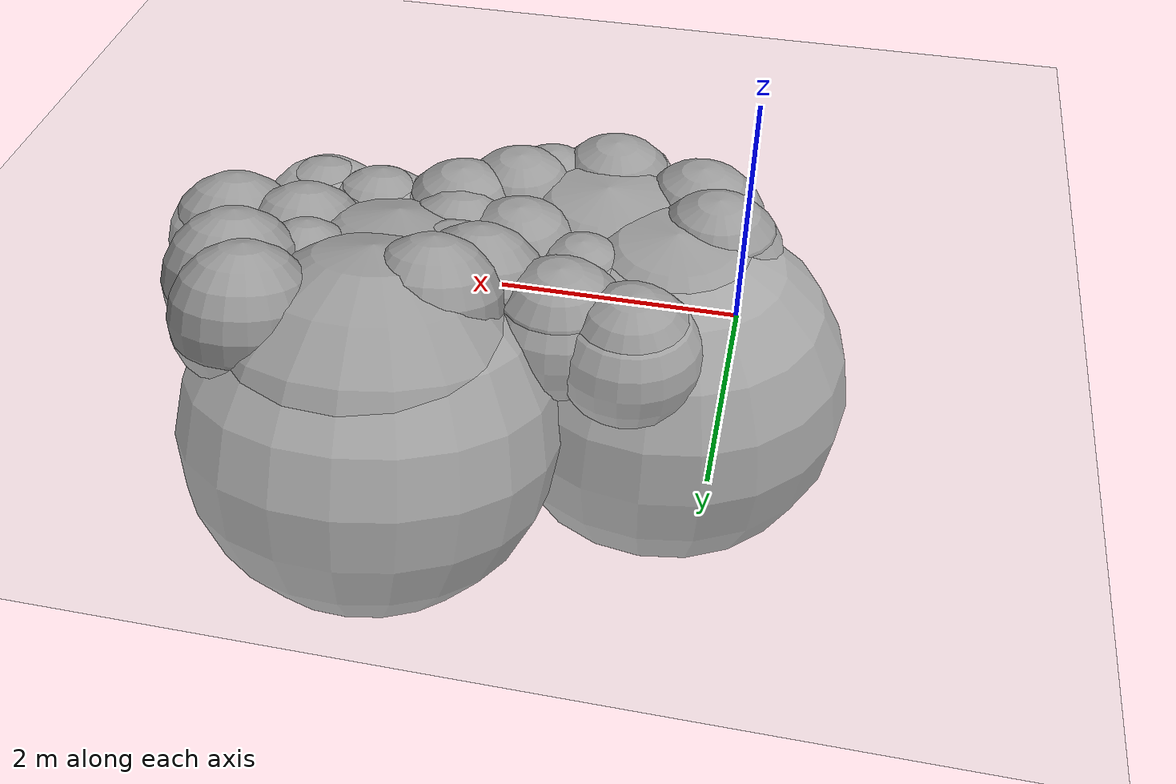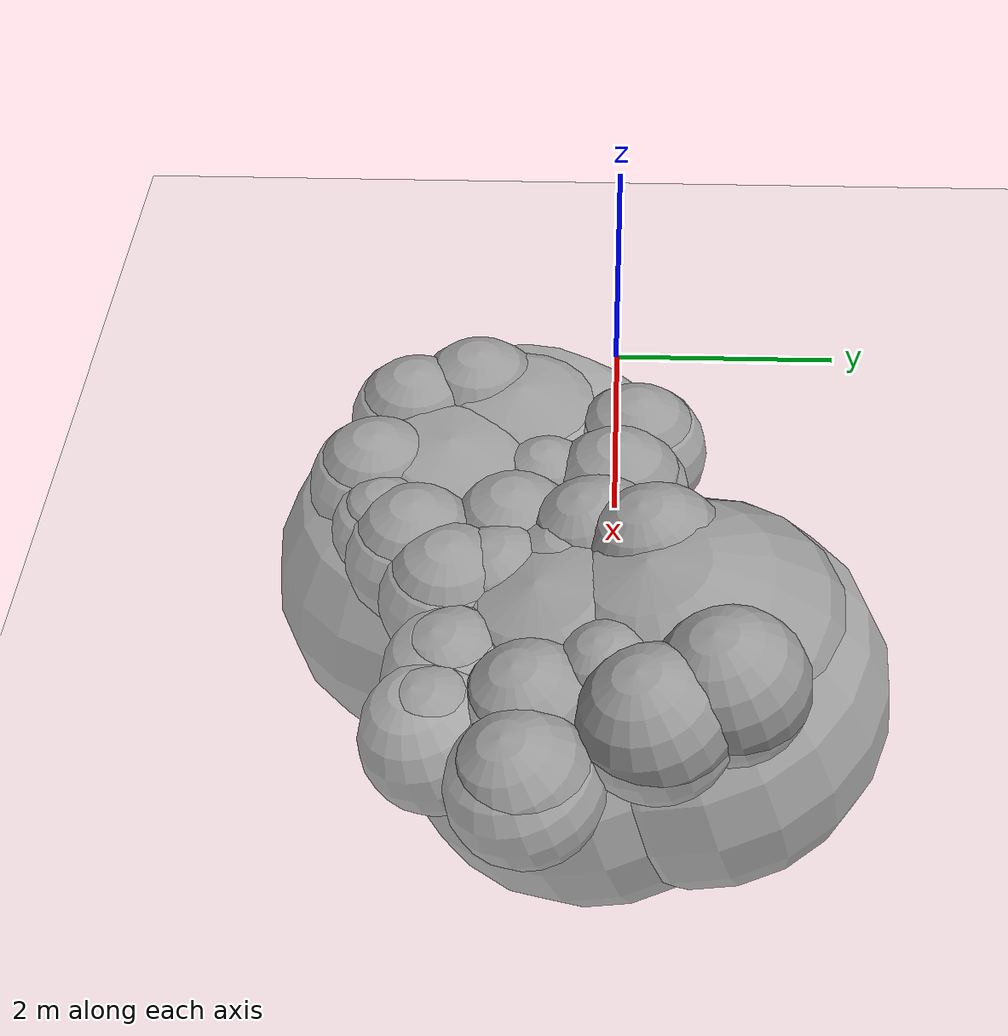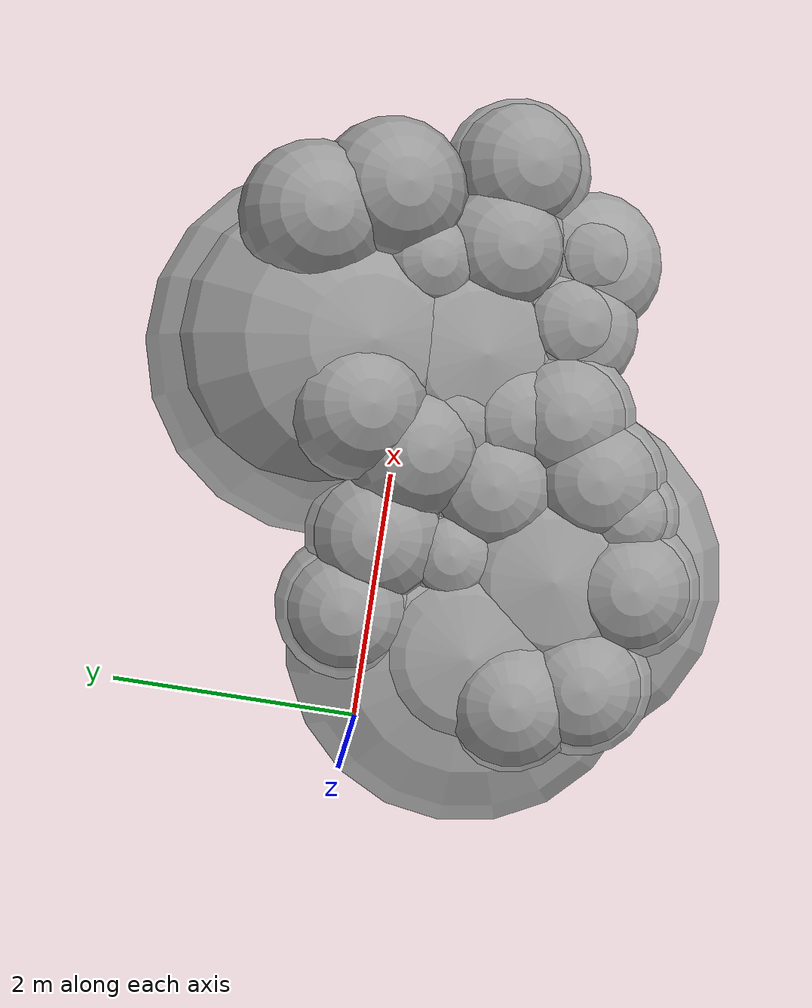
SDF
<sdf version="1.7">
 <world name="default">
  <light name="sun" type="directional">
   <pose>0 0 10 0 -0 0</pose>
   <diffuse>0.8 0.8 0.8 1</diffuse>
   <specular>0.2 0.2 0.2 1</specular>
   <attenuation>
    <range>1000</range>
    <constant>0.9</constant>
    <linear>0.01</linear>
    <quadratic>0.001</quadratic>
   </attenuation>
   <direction>-0.5 0.1 -0.9</direction>
   <spot><inner_angle>0</inner_angle><outer_angle>0</outer_angle><falloff>0</falloff></spot>
  </light>
  <model name="ground_plane">
   <static>1</static>
   <link name="link">
    <collision name="collision">
     <geometry><plane><normal>0 0 1</normal><size>100 100</size></plane></geometry>
     <surface>
      <contact><collide_bitmask>65535</collide_bitmask></contact>
      <friction><ode><mu>100</mu><mu2>50</mu2></ode></friction>
     </surface>
    </collision>
    <visual name="visual">
     <cast_shadows>0</cast_shadows>
     <geometry><plane><normal>0 0 1</normal><size>100 100</size></plane></geometry>
     <material>
      <script><uri>file://media/materials/scripts/gazebo.material</uri><name>Gazebo/Grey</name></script>
     </material>
    </visual>
   </link>
  </model>
  <gravity>0 0 -9.8</gravity>
  <magnetic_field>6e-06 2.3e-05 -4.2e-05</magnetic_field>
  <atmosphere type="adiabatic"/>
  <physics type="ode">
   <max_step_size>0.001</max_step_size>
   <real_time_factor>1</real_time_factor>
   <real_time_update_rate>1000</real_time_update_rate>
  </physics>
  <scene><ambient>0.4 0.4 0.4 1</ambient><background>0.7 0.7 0.7 1</background><shadows>1</shadows></scene>
  <spherical_coordinates>
   <surface_model>EARTH_WGS84</surface_model>
   <latitude_deg>0</latitude_deg>
   <longitude_deg>0</longitude_deg>
   <elevation>0</elevation>
   <heading_deg>0</heading_deg>
  </spherical_coordinates>
  <model name="terrain">
   <link name="link">
    <inertial>
     <mass>2.0634</mass>
     <inertia><ixx>0.33445</ixx><ixy>0</ixy><ixz>0</ixz><iyy>0.33445</iyy><iyz>0</iyz><izz>0.33445</izz></inertia>
    </inertial>
    <pose>0 0 -0.895322 0 -0 0</pose>
    <visual name="visual">
     <geometry><sphere><radius>0.636567</radius></sphere></geometry>
     <material>
      <script><name>Gazebo/Grey</name><uri>file://media/materials/scripts/gazebo.material</uri></script>
      <shader type="pixel"/>
     </material>
    </visual>
    <collision name="collision">
     <geometry><sphere><radius>0.636567</radius></sphere></geometry>
     <surface>
      <friction>
       <ode><mu>1</mu><mu2>1</mu2><fdir1>0 0 0</fdir1><slip1>0</slip1><slip2>0</slip2></ode>
       <torsional>
        <coefficient>1</coefficient>
        <patch_radius>0</patch_radius>
        <surface_radius>0</surface_radius>
        <use_patch_radius>1</use_patch_radius>
        <ode><slip>0</slip></ode>
       </torsional>
      </friction>
      <bounce><restitution_coefficient>0</restitution_coefficient><threshold>1e+06</threshold></bounce>
      <contact>
       <collide_without_contact>0</collide_without_contact>
       <collide_without_contact_bitmask>1</collide_without_contact_bitmask>
       <collide_bitmask>1</collide_bitmask>
       <ode>
        <soft_cfm>0</soft_cfm>
        <soft_erp>0.2</soft_erp>
        <kp>1e+13</kp>
        <kd>1</kd>
        <max_vel>0.01</max_vel>
        <min_depth>0</min_depth>
       </ode>
       <bullet>
        <split_impulse>1</split_impulse>
        <split_impulse_penetration_threshold>-0.01</split_impulse_penetration_threshold>
        <soft_cfm>0</soft_cfm>
        <soft_erp>0.2</soft_erp>
        <kp>1e+13</kp>
        <kd>1</kd>
       </bullet>
      </contact>
     </surface>
    </collision>
   </link>
   <link name="link_clone">
    <inertial>
     <mass>38.5876</mass>
     <inertia><ixx>44.0697</ixx><ixy>0</ixy><ixz>0</ixz><iyy>44.0697</iyy><iyz>0</iyz><izz>44.0697</izz></inertia>
    </inertial>
    <pose>0.102953 0.962048 -2.02715 0 -0 0</pose>
    <visual name="visual">
     <geometry><sphere><radius>1.68973</radius></sphere></geometry>
     <material>
      <script><name>Gazebo/Grey</name><uri>file://media/materials/scripts/gazebo.material</uri></script>
      <shader type="pixel"/>
     </material>
    </visual>
    <collision name="collision">
     <geometry><sphere><radius>1.68973</radius></sphere></geometry>
     <surface>
      <friction>
       <ode><mu>1</mu><mu2>1</mu2><fdir1>0 0 0</fdir1><slip1>0</slip1><slip2>0</slip2></ode>
       <torsional>
        <coefficient>1</coefficient>
        <patch_radius>0</patch_radius>
        <surface_radius>0</surface_radius>
        <use_patch_radius>1</use_patch_radius>
        <ode><slip>0</slip></ode>
       </torsional>
      </friction>
      <bounce><restitution_coefficient>0</restitution_coefficient><threshold>1e+06</threshold></bounce>
      <contact>
       <collide_without_contact>0</collide_without_contact>
       <collide_without_contact_bitmask>1</collide_without_contact_bitmask>
       <collide_bitmask>1</collide_bitmask>
       <ode>
        <soft_cfm>0</soft_cfm>
        <soft_erp>0.2</soft_erp>
        <kp>1e+13</kp>
        <kd>1</kd>
        <max_vel>0.01</max_vel>
        <min_depth>0</min_depth>
       </ode>
       <bullet>
        <split_impulse>1</split_impulse>
        <split_impulse_penetration_threshold>-0.01</split_impulse_penetration_threshold>
        <soft_cfm>0</soft_cfm>
        <soft_erp>0.2</soft_erp>
        <kp>1e+13</kp>
        <kd>1</kd>
       </bullet>
      </contact>
     </surface>
    </collision>
   </link>
   <link name="link_clone_0">
    <inertial>
     <mass>0.929745</mass>
     <inertia>
      <ixx>0.0885716</ixx>
      <ixy>0</ixy>
      <ixz>0</ixz>
      <iyy>0.0885716</iyy>
      <iyz>0</iyz>
      <izz>0.0885716</izz>
     </inertia>
    </inertial>
    <pose>1.44429 -0.153283 -0.844296 0 -0 0</pose>
    <visual name="visual">
     <geometry><sphere><radius>0.488017</radius></sphere></geometry>
     <material>
      <script><name>Gazebo/Grey</name><uri>file://media/materials/scripts/gazebo.material</uri></script>
      <shader type="pixel"/>
     </material>
    </visual>
    <collision name="collision">
     <geometry><sphere><radius>0.488017</radius></sphere></geometry>
     <surface>
      <friction>
       <ode><mu>1</mu><mu2>1</mu2><fdir1>0 0 0</fdir1><slip1>0</slip1><slip2>0</slip2></ode>
       <torsional>
        <coefficient>1</coefficient>
        <patch_radius>0</patch_radius>
        <surface_radius>0</surface_radius>
        <use_patch_radius>1</use_patch_radius>
        <ode><slip>0</slip></ode>
       </torsional>
      </friction>
      <bounce><restitution_coefficient>0</restitution_coefficient><threshold>1e+06</threshold></bounce>
      <contact>
       <collide_without_contact>0</collide_without_contact>
       <collide_without_contact_bitmask>1</collide_without_contact_bitmask>
       <collide_bitmask>1</collide_bitmask>
       <ode>
        <soft_cfm>0</soft_cfm>
        <soft_erp>0.2</soft_erp>
        <kp>1e+13</kp>
        <kd>1</kd>
        <max_vel>0.01</max_vel>
        <min_depth>0</min_depth>
       </ode>
       <bullet>
        <split_impulse>1</split_impulse>
        <split_impulse_penetration_threshold>-0.01</split_impulse_penetration_threshold>
        <soft_cfm>0</soft_cfm>
        <soft_erp>0.2</soft_erp>
        <kp>1e+13</kp>
        <kd>1</kd>
       </bullet>
      </contact>
     </surface>
    </collision>
   </link>
   <link name="link_clone_0_clone">
    <inertial>
     <mass>0.929745</mass>
     <inertia>
      <ixx>0.0885716</ixx>
      <ixy>0</ixy>
      <ixz>0</ixz>
      <iyy>0.0885716</iyy>
      <iyz>0</iyz>
      <izz>0.0885716</izz>
     </inertia>
    </inertial>
    <pose>0.905549 1.22432 -0.844296 0 -0 0</pose>
    <visual name="visual">
     <geometry><sphere><radius>0.488017</radius></sphere></geometry>
     <material>
      <script><name>Gazebo/Grey</name><uri>file://media/materials/scripts/gazebo.material</uri></script>
      <shader type="pixel"/>
     </material>
    </visual>
    <collision name="collision">
     <geometry><sphere><radius>0.488017</radius></sphere></geometry>
     <surface>
      <friction>
       <ode><mu>1</mu><mu2>1</mu2><fdir1>0 0 0</fdir1><slip1>0</slip1><slip2>0</slip2></ode>
       <torsional>
        <coefficient>1</coefficient>
        <patch_radius>0</patch_radius>
        <surface_radius>0</surface_radius>
        <use_patch_radius>1</use_patch_radius>
        <ode><slip>0</slip></ode>
       </torsional>
      </friction>
      <bounce><restitution_coefficient>0</restitution_coefficient><threshold>1e+06</threshold></bounce>
      <contact>
       <collide_without_contact>0</collide_without_contact>
       <collide_without_contact_bitmask>1</collide_without_contact_bitmask>
       <collide_bitmask>1</collide_bitmask>
       <ode>
        <soft_cfm>0</soft_cfm>
        <soft_erp>0.2</soft_erp>
        <kp>1e+13</kp>
        <kd>1</kd>
        <max_vel>0.01</max_vel>
        <min_depth>0</min_depth>
       </ode>
       <bullet>
        <split_impulse>1</split_impulse>
        <split_impulse_penetration_threshold>-0.01</split_impulse_penetration_threshold>
        <soft_cfm>0</soft_cfm>
        <soft_erp>0.2</soft_erp>
        <kp>1e+13</kp>
        <kd>1</kd>
       </bullet>
      </contact>
     </surface>
    </collision>
   </link>
   <link name="link_clone_1">
    <inertial>
     <mass>2.0634</mass>
     <inertia><ixx>0.33445</ixx><ixy>0</ixy><ixz>0</ixz><iyy>0.33445</iyy><iyz>0</iyz><izz>0.33445</izz></inertia>
    </inertial>
    <pose>0.979794 1.856 -0.840889 0 -0 0</pose>
    <visual name="visual">
     <geometry><sphere><radius>0.636567</radius></sphere></geometry>
     <material>
      <script><name>Gazebo/Grey</name><uri>file://media/materials/scripts/gazebo.material</uri></script>
      <shader type="pixel"/>
     </material>
    </visual>
    <collision name="collision">
     <geometry><sphere><radius>0.636567</radius></sphere></geometry>
     <surface>
      <friction>
       <ode><mu>1</mu><mu2>1</mu2><fdir1>0 0 0</fdir1><slip1>0</slip1><slip2>0</slip2></ode>
       <torsional>
        <coefficient>1</coefficient>
        <patch_radius>0</patch_radius>
        <surface_radius>0</surface_radius>
        <use_patch_radius>1</use_patch_radius>
        <ode><slip>0</slip></ode>
       </torsional>
      </friction>
      <bounce><restitution_coefficient>0</restitution_coefficient><threshold>1e+06</threshold></bounce>
      <contact>
       <collide_without_contact>0</collide_without_contact>
       <collide_without_contact_bitmask>1</collide_without_contact_bitmask>
       <collide_bitmask>1</collide_bitmask>
       <ode>
        <soft_cfm>0</soft_cfm>
        <soft_erp>0.2</soft_erp>
        <kp>1e+13</kp>
        <kd>1</kd>
        <max_vel>0.01</max_vel>
        <min_depth>0</min_depth>
       </ode>
       <bullet>
        <split_impulse>1</split_impulse>
        <split_impulse_penetration_threshold>-0.01</split_impulse_penetration_threshold>
        <soft_cfm>0</soft_cfm>
        <soft_erp>0.2</soft_erp>
        <kp>1e+13</kp>
        <kd>1</kd>
       </bullet>
      </contact>
     </surface>
    </collision>
   </link>
   <link name="link_clone_1_clone">
    <inertial>
     <mass>2.0634</mass>
     <inertia><ixx>0.33445</ixx><ixy>0</ixy><ixz>0</ixz><iyy>0.33445</iyy><iyz>0</iyz><izz>0.33445</izz></inertia>
    </inertial>
    <pose>-0.21081 0.562308 -0.840889 0 -0 0</pose>
    <visual name="visual">
     <geometry><sphere><radius>0.636567</radius></sphere></geometry>
     <material>
      <script><name>Gazebo/Grey</name><uri>file://media/materials/scripts/gazebo.material</uri></script>
      <shader type="pixel"/>
     </material>
    </visual>
    <collision name="collision">
     <geometry><sphere><radius>0.636567</radius></sphere></geometry>
     <surface>
      <friction>
       <ode><mu>1</mu><mu2>1</mu2><fdir1>0 0 0</fdir1><slip1>0</slip1><slip2>0</slip2></ode>
       <torsional>
        <coefficient>1</coefficient>
        <patch_radius>0</patch_radius>
        <surface_radius>0</surface_radius>
        <use_patch_radius>1</use_patch_radius>
        <ode><slip>0</slip></ode>
       </torsional>
      </friction>
      <bounce><restitution_coefficient>0</restitution_coefficient><threshold>1e+06</threshold></bounce>
      <contact>
       <collide_without_contact>0</collide_without_contact>
       <collide_without_contact_bitmask>1</collide_without_contact_bitmask>
       <collide_bitmask>1</collide_bitmask>
       <ode>
        <soft_cfm>0</soft_cfm>
        <soft_erp>0.2</soft_erp>
        <kp>1e+13</kp>
        <kd>1</kd>
        <max_vel>0.01</max_vel>
        <min_depth>0</min_depth>
       </ode>
       <bullet>
        <split_impulse>1</split_impulse>
        <split_impulse_penetration_threshold>-0.01</split_impulse_penetration_threshold>
        <soft_cfm>0</soft_cfm>
        <soft_erp>0.2</soft_erp>
        <kp>1e+13</kp>
        <kd>1</kd>
       </bullet>
      </contact>
     </surface>
    </collision>
   </link>
   <link name="link_clone_2">
    <inertial>
     <mass>2.0634</mass>
     <inertia><ixx>0.33445</ixx><ixy>0</ixy><ixz>0</ixz><iyy>0.33445</iyy><iyz>0</iyz><izz>0.33445</izz></inertia>
    </inertial>
    <pose>2.16989 0.465045 -0.895322 0 -0 0</pose>
    <visual name="visual">
     <geometry><sphere><radius>0.636567</radius></sphere></geometry>
     <material>
      <script><name>Gazebo/Grey</name><uri>file://media/materials/scripts/gazebo.material</uri></script>
      <shader type="pixel"/>
     </material>
    </visual>
    <collision name="collision">
     <geometry><sphere><radius>0.636567</radius></sphere></geometry>
     <surface>
      <friction>
       <ode><mu>1</mu><mu2>1</mu2><fdir1>0 0 0</fdir1><slip1>0</slip1><slip2>0</slip2></ode>
       <torsional>
        <coefficient>1</coefficient>
        <patch_radius>0</patch_radius>
        <surface_radius>0</surface_radius>
        <use_patch_radius>1</use_patch_radius>
        <ode><slip>0</slip></ode>
       </torsional>
      </friction>
      <bounce><restitution_coefficient>0</restitution_coefficient><threshold>1e+06</threshold></bounce>
      <contact>
       <collide_without_contact>0</collide_without_contact>
       <collide_without_contact_bitmask>1</collide_without_contact_bitmask>
       <collide_bitmask>1</collide_bitmask>
       <ode>
        <soft_cfm>0</soft_cfm>
        <soft_erp>0.2</soft_erp>
        <kp>1e+13</kp>
        <kd>1</kd>
        <max_vel>0.01</max_vel>
        <min_depth>0</min_depth>
       </ode>
       <bullet>
        <split_impulse>1</split_impulse>
        <split_impulse_penetration_threshold>-0.01</split_impulse_penetration_threshold>
        <soft_cfm>0</soft_cfm>
        <soft_erp>0.2</soft_erp>
        <kp>1e+13</kp>
        <kd>1</kd>
       </bullet>
      </contact>
     </surface>
    </collision>
   </link>
   <link name="link_clone_3">
    <inertial>
     <mass>2.0634</mass>
     <inertia><ixx>0.33445</ixx><ixy>0</ixy><ixz>0</ixz><iyy>0.33445</iyy><iyz>0</iyz><izz>0.33445</izz></inertia>
    </inertial>
    <pose>2.02089 1.44509 -0.895322 0 -0 0</pose>
    <visual name="visual">
     <geometry><sphere><radius>0.636567</radius></sphere></geometry>
     <material>
      <script><name>Gazebo/Grey</name><uri>file://media/materials/scripts/gazebo.material</uri></script>
      <shader type="pixel"/>
     </material>
    </visual>
    <collision name="collision">
     <geometry><sphere><radius>0.636567</radius></sphere></geometry>
     <surface>
      <friction>
       <ode><mu>1</mu><mu2>1</mu2><fdir1>0 0 0</fdir1><slip1>0</slip1><slip2>0</slip2></ode>
       <torsional>
        <coefficient>1</coefficient>
        <patch_radius>0</patch_radius>
        <surface_radius>0</surface_radius>
        <use_patch_radius>1</use_patch_radius>
        <ode><slip>0</slip></ode>
       </torsional>
      </friction>
      <bounce><restitution_coefficient>0</restitution_coefficient><threshold>1e+06</threshold></bounce>
      <contact>
       <collide_without_contact>0</collide_without_contact>
       <collide_without_contact_bitmask>1</collide_without_contact_bitmask>
       <collide_bitmask>1</collide_bitmask>
       <ode>
        <soft_cfm>0</soft_cfm>
        <soft_erp>0.2</soft_erp>
        <kp>1e+13</kp>
        <kd>1</kd>
        <max_vel>0.01</max_vel>
        <min_depth>0</min_depth>
       </ode>
       <bullet>
        <split_impulse>1</split_impulse>
        <split_impulse_penetration_threshold>-0.01</split_impulse_penetration_threshold>
        <soft_cfm>0</soft_cfm>
        <soft_erp>0.2</soft_erp>
        <kp>1e+13</kp>
        <kd>1</kd>
       </bullet>
      </contact>
     </surface>
    </collision>
   </link>
   <link name="link_clone_4">
    <inertial>
     <mass>2.0634</mass>
     <inertia><ixx>0.33445</ixx><ixy>0</ixy><ixz>0</ixz><iyy>0.33445</iyy><iyz>0</iyz><izz>0.33445</izz></inertia>
    </inertial>
    <pose>0.338215 2.02022 -0.895322 0 -0 0</pose>
    <visual name="visual">
     <geometry><sphere><radius>0.636567</radius></sphere></geometry>
     <material>
      <script><name>Gazebo/Grey</name><uri>file://media/materials/scripts/gazebo.material</uri></script>
      <shader type="pixel"/>
     </material>
    </visual>
    <collision name="collision">
     <geometry><sphere><radius>0.636567</radius></sphere></geometry>
     <surface>
      <friction>
       <ode><mu>1</mu><mu2>1</mu2><fdir1>0 0 0</fdir1><slip1>0</slip1><slip2>0</slip2></ode>
       <torsional>
        <coefficient>1</coefficient>
        <patch_radius>0</patch_radius>
        <surface_radius>0</surface_radius>
        <use_patch_radius>1</use_patch_radius>
        <ode><slip>0</slip></ode>
       </torsional>
      </friction>
      <bounce><restitution_coefficient>0</restitution_coefficient><threshold>1e+06</threshold></bounce>
      <contact>
       <collide_without_contact>0</collide_without_contact>
       <collide_without_contact_bitmask>1</collide_without_contact_bitmask>
       <collide_bitmask>1</collide_bitmask>
       <ode>
        <soft_cfm>0</soft_cfm>
        <soft_erp>0.2</soft_erp>
        <kp>1e+13</kp>
        <kd>1</kd>
        <max_vel>0.01</max_vel>
        <min_depth>0</min_depth>
       </ode>
       <bullet>
        <split_impulse>1</split_impulse>
        <split_impulse_penetration_threshold>-0.01</split_impulse_penetration_threshold>
        <soft_cfm>0</soft_cfm>
        <soft_erp>0.2</soft_erp>
        <kp>1e+13</kp>
        <kd>1</kd>
       </bullet>
      </contact>
     </surface>
    </collision>
   </link>
   <link name="link_clone_5">
    <inertial>
     <mass>2.0634</mass>
     <inertia><ixx>0.33445</ixx><ixy>0</ixy><ixz>0</ixz><iyy>0.33445</iyy><iyz>0</iyz><izz>0.33445</izz></inertia>
    </inertial>
    <pose>0.851628 -0.275573 -0.895322 0 -0 0</pose>
    <visual name="visual">
     <geometry><sphere><radius>0.636567</radius></sphere></geometry>
     <material>
      <script><name>Gazebo/Grey</name><uri>file://media/materials/scripts/gazebo.material</uri></script>
      <shader type="pixel"/>
     </material>
    </visual>
    <collision name="collision">
     <geometry><sphere><radius>0.636567</radius></sphere></geometry>
     <surface>
      <friction>
       <ode><mu>1</mu><mu2>1</mu2><fdir1>0 0 0</fdir1><slip1>0</slip1><slip2>0</slip2></ode>
       <torsional>
        <coefficient>1</coefficient>
        <patch_radius>0</patch_radius>
        <surface_radius>0</surface_radius>
        <use_patch_radius>1</use_patch_radius>
        <ode><slip>0</slip></ode>
       </torsional>
      </friction>
      <bounce><restitution_coefficient>0</restitution_coefficient><threshold>1e+06</threshold></bounce>
      <contact>
       <collide_without_contact>0</collide_without_contact>
       <collide_without_contact_bitmask>1</collide_without_contact_bitmask>
       <collide_bitmask>1</collide_bitmask>
       <ode>
        <soft_cfm>0</soft_cfm>
        <soft_erp>0.2</soft_erp>
        <kp>1e+13</kp>
        <kd>1</kd>
        <max_vel>0.01</max_vel>
        <min_depth>0</min_depth>
       </ode>
       <bullet>
        <split_impulse>1</split_impulse>
        <split_impulse_penetration_threshold>-0.01</split_impulse_penetration_threshold>
        <soft_cfm>0</soft_cfm>
        <soft_erp>0.2</soft_erp>
        <kp>1e+13</kp>
        <kd>1</kd>
       </bullet>
      </contact>
     </surface>
    </collision>
   </link>
   <link name="link_clone_6">
    <inertial>
     <mass>2.0634</mass>
     <inertia><ixx>0.33445</ixx><ixy>0</ixy><ixz>0</ixz><iyy>0.33445</iyy><iyz>0</iyz><izz>0.33445</izz></inertia>
    </inertial>
    <pose>1.69324 0.128534 -0.895322 0 -0 0</pose>
    <visual name="visual">
     <geometry><sphere><radius>0.636567</radius></sphere></geometry>
     <material>
      <script><name>Gazebo/Grey</name><uri>file://media/materials/scripts/gazebo.material</uri></script>
      <shader type="pixel"/>
     </material>
    </visual>
    <collision name="collision">
     <geometry><sphere><radius>0.636567</radius></sphere></geometry>
     <surface>
      <friction>
       <ode><mu>1</mu><mu2>1</mu2><fdir1>0 0 0</fdir1><slip1>0</slip1><slip2>0</slip2></ode>
       <torsional>
        <coefficient>1</coefficient>
        <patch_radius>0</patch_radius>
        <surface_radius>0</surface_radius>
        <use_patch_radius>1</use_patch_radius>
        <ode><slip>0</slip></ode>
       </torsional>
      </friction>
      <bounce><restitution_coefficient>0</restitution_coefficient><threshold>1e+06</threshold></bounce>
      <contact>
       <collide_without_contact>0</collide_without_contact>
       <collide_without_contact_bitmask>1</collide_without_contact_bitmask>
       <collide_bitmask>1</collide_bitmask>
       <ode>
        <soft_cfm>0</soft_cfm>
        <soft_erp>0.2</soft_erp>
        <kp>1e+13</kp>
        <kd>1</kd>
        <max_vel>0.01</max_vel>
        <min_depth>0</min_depth>
       </ode>
       <bullet>
        <split_impulse>1</split_impulse>
        <split_impulse_penetration_threshold>-0.01</split_impulse_penetration_threshold>
        <soft_cfm>0</soft_cfm>
        <soft_erp>0.2</soft_erp>
        <kp>1e+13</kp>
        <kd>1</kd>
       </bullet>
      </contact>
     </surface>
    </collision>
   </link>
   <link name="link_clone_7">
    <inertial>
     <mass>2.0634</mass>
     <inertia><ixx>0.33445</ixx><ixy>0</ixy><ixz>0</ixz><iyy>0.33445</iyy><iyz>0</iyz><izz>0.33445</izz></inertia>
    </inertial>
    <pose>1.51945 0.967257 -0.895322 0 -0 0</pose>
    <visual name="visual">
     <geometry><sphere><radius>0.636567</radius></sphere></geometry>
     <material>
      <script><name>Gazebo/Grey</name><uri>file://media/materials/scripts/gazebo.material</uri></script>
      <shader type="pixel"/>
     </material>
    </visual>
    <collision name="collision">
     <geometry><sphere><radius>0.636567</radius></sphere></geometry>
     <surface>
      <friction>
       <ode><mu>1</mu><mu2>1</mu2><fdir1>0 0 0</fdir1><slip1>0</slip1><slip2>0</slip2></ode>
       <torsional>
        <coefficient>1</coefficient>
        <patch_radius>0</patch_radius>
        <surface_radius>0</surface_radius>
        <use_patch_radius>1</use_patch_radius>
        <ode><slip>0</slip></ode>
       </torsional>
      </friction>
      <bounce><restitution_coefficient>0</restitution_coefficient><threshold>1e+06</threshold></bounce>
      <contact>
       <collide_without_contact>0</collide_without_contact>
       <collide_without_contact_bitmask>1</collide_without_contact_bitmask>
       <collide_bitmask>1</collide_bitmask>
       <ode>
        <soft_cfm>0</soft_cfm>
        <soft_erp>0.2</soft_erp>
        <kp>1e+13</kp>
        <kd>1</kd>
        <max_vel>0.01</max_vel>
        <min_depth>0</min_depth>
       </ode>
       <bullet>
        <split_impulse>1</split_impulse>
        <split_impulse_penetration_threshold>-0.01</split_impulse_penetration_threshold>
        <soft_cfm>0</soft_cfm>
        <soft_erp>0.2</soft_erp>
        <kp>1e+13</kp>
        <kd>1</kd>
       </bullet>
      </contact>
     </surface>
    </collision>
   </link>
   <link name="link_clone_clone">
    <inertial>
     <mass>38.5876</mass>
     <inertia><ixx>44.0697</ixx><ixy>0</ixy><ixz>0</ixz><iyy>44.0697</iyy><iyz>0</iyz><izz>44.0697</izz></inertia>
    </inertial>
    <pose>0.822157 0.371529 -2.02715 0 -0 0</pose>
    <visual name="visual">
     <geometry><sphere><radius>1.68973</radius></sphere></geometry>
     <material>
      <script><name>Gazebo/Grey</name><uri>file://media/materials/scripts/gazebo.material</uri></script>
      <shader type="pixel"/>
     </material>
    </visual>
    <collision name="collision">
     <geometry><sphere><radius>1.68973</radius></sphere></geometry>
     <surface>
      <friction>
       <ode><mu>1</mu><mu2>1</mu2><fdir1>0 0 0</fdir1><slip1>0</slip1><slip2>0</slip2></ode>
       <torsional>
        <coefficient>1</coefficient>
        <patch_radius>0</patch_radius>
        <surface_radius>0</surface_radius>
        <use_patch_radius>1</use_patch_radius>
        <ode><slip>0</slip></ode>
       </torsional>
      </friction>
      <bounce><restitution_coefficient>0</restitution_coefficient><threshold>1e+06</threshold></bounce>
      <contact>
       <collide_without_contact>0</collide_without_contact>
       <collide_without_contact_bitmask>1</collide_without_contact_bitmask>
       <collide_bitmask>1</collide_bitmask>
       <ode>
        <soft_cfm>0</soft_cfm>
        <soft_erp>0.2</soft_erp>
        <kp>1e+13</kp>
        <kd>1</kd>
        <max_vel>0.01</max_vel>
        <min_depth>0</min_depth>
       </ode>
       <bullet>
        <split_impulse>1</split_impulse>
        <split_impulse_penetration_threshold>-0.01</split_impulse_penetration_threshold>
        <soft_cfm>0</soft_cfm>
        <soft_erp>0.2</soft_erp>
        <kp>1e+13</kp>
        <kd>1</kd>
       </bullet>
      </contact>
     </surface>
    </collision>
   </link>
   <static>1</static>
   <pose>0.511481 -1.81918 0.480538 0 -0 0</pose>
  </model>
  <model name="terrain_clone">
   <link name="link">
    <inertial>
     <mass>2.0634</mass>
     <inertia><ixx>0.33445</ixx><ixy>0</ixy><ixz>0</ixz><iyy>0.33445</iyy><iyz>0</iyz><izz>0.33445</izz></inertia>
    </inertial>
    <pose>0 0 -0.895322 0 -0 0</pose>
    <visual name="visual">
     <geometry><sphere><radius>0.636567</radius></sphere></geometry>
     <material>
      <script><name>Gazebo/Grey</name><uri>file://media/materials/scripts/gazebo.material</uri></script>
      <shader type="pixel"/>
     </material>
    </visual>
    <collision name="collision">
     <geometry><sphere><radius>0.636567</radius></sphere></geometry>
     <surface>
      <friction>
       <ode><mu>1</mu><mu2>1</mu2><fdir1>0 0 0</fdir1><slip1>0</slip1><slip2>0</slip2></ode>
       <torsional>
        <coefficient>1</coefficient>
        <patch_radius>0</patch_radius>
        <surface_radius>0</surface_radius>
        <use_patch_radius>1</use_patch_radius>
        <ode><slip>0</slip></ode>
       </torsional>
      </friction>
      <bounce><restitution_coefficient>0</restitution_coefficient><threshold>1e+06</threshold></bounce>
      <contact>
       <collide_without_contact>0</collide_without_contact>
       <collide_without_contact_bitmask>1</collide_without_contact_bitmask>
       <collide_bitmask>1</collide_bitmask>
       <ode>
        <soft_cfm>0</soft_cfm>
        <soft_erp>0.2</soft_erp>
        <kp>1e+13</kp>
        <kd>1</kd>
        <max_vel>0.01</max_vel>
        <min_depth>0</min_depth>
       </ode>
       <bullet>
        <split_impulse>1</split_impulse>
        <split_impulse_penetration_threshold>-0.01</split_impulse_penetration_threshold>
        <soft_cfm>0</soft_cfm>
        <soft_erp>0.2</soft_erp>
        <kp>1e+13</kp>
        <kd>1</kd>
       </bullet>
      </contact>
     </surface>
    </collision>
   </link>
   <link name="link_clone">
    <inertial>
     <mass>38.5876</mass>
     <inertia><ixx>44.0697</ixx><ixy>0</ixy><ixz>0</ixz><iyy>44.0697</iyy><iyz>0</iyz><izz>44.0697</izz></inertia>
    </inertial>
    <pose>0.102953 0.962048 -2.02715 0 -0 0</pose>
    <visual name="visual">
     <geometry><sphere><radius>1.68973</radius></sphere></geometry>
     <material>
      <script><name>Gazebo/Grey</name><uri>file://media/materials/scripts/gazebo.material</uri></script>
      <shader type="pixel"/>
     </material>
    </visual>
    <collision name="collision">
     <geometry><sphere><radius>1.68973</radius></sphere></geometry>
     <surface>
      <friction>
       <ode><mu>1</mu><mu2>1</mu2><fdir1>0 0 0</fdir1><slip1>0</slip1><slip2>0</slip2></ode>
       <torsional>
        <coefficient>1</coefficient>
        <patch_radius>0</patch_radius>
        <surface_radius>0</surface_radius>
        <use_patch_radius>1</use_patch_radius>
        <ode><slip>0</slip></ode>
       </torsional>
      </friction>
      <bounce><restitution_coefficient>0</restitution_coefficient><threshold>1e+06</threshold></bounce>
      <contact>
       <collide_without_contact>0</collide_without_contact>
       <collide_without_contact_bitmask>1</collide_without_contact_bitmask>
       <collide_bitmask>1</collide_bitmask>
       <ode>
        <soft_cfm>0</soft_cfm>
        <soft_erp>0.2</soft_erp>
        <kp>1e+13</kp>
        <kd>1</kd>
        <max_vel>0.01</max_vel>
        <min_depth>0</min_depth>
       </ode>
       <bullet>
        <split_impulse>1</split_impulse>
        <split_impulse_penetration_threshold>-0.01</split_impulse_penetration_threshold>
        <soft_cfm>0</soft_cfm>
        <soft_erp>0.2</soft_erp>
        <kp>1e+13</kp>
        <kd>1</kd>
       </bullet>
      </contact>
     </surface>
    </collision>
   </link>
   <link name="link_clone_0">
    <inertial>
     <mass>0.929745</mass>
     <inertia>
      <ixx>0.0885716</ixx>
      <ixy>0</ixy>
      <ixz>0</ixz>
      <iyy>0.0885716</iyy>
      <iyz>0</iyz>
      <izz>0.0885716</izz>
     </inertia>
    </inertial>
    <pose>1.44429 -0.153283 -0.844296 0 -0 0</pose>
    <visual name="visual">
     <geometry><sphere><radius>0.488017</radius></sphere></geometry>
     <material>
      <script><name>Gazebo/Grey</name><uri>file://media/materials/scripts/gazebo.material</uri></script>
      <shader type="pixel"/>
     </material>
    </visual>
    <collision name="collision">
     <geometry><sphere><radius>0.488017</radius></sphere></geometry>
     <surface>
      <friction>
       <ode><mu>1</mu><mu2>1</mu2><fdir1>0 0 0</fdir1><slip1>0</slip1><slip2>0</slip2></ode>
       <torsional>
        <coefficient>1</coefficient>
        <patch_radius>0</patch_radius>
        <surface_radius>0</surface_radius>
        <use_patch_radius>1</use_patch_radius>
        <ode><slip>0</slip></ode>
       </torsional>
      </friction>
      <bounce><restitution_coefficient>0</restitution_coefficient><threshold>1e+06</threshold></bounce>
      <contact>
       <collide_without_contact>0</collide_without_contact>
       <collide_without_contact_bitmask>1</collide_without_contact_bitmask>
       <collide_bitmask>1</collide_bitmask>
       <ode>
        <soft_cfm>0</soft_cfm>
        <soft_erp>0.2</soft_erp>
        <kp>1e+13</kp>
        <kd>1</kd>
        <max_vel>0.01</max_vel>
        <min_depth>0</min_depth>
       </ode>
       <bullet>
        <split_impulse>1</split_impulse>
        <split_impulse_penetration_threshold>-0.01</split_impulse_penetration_threshold>
        <soft_cfm>0</soft_cfm>
        <soft_erp>0.2</soft_erp>
        <kp>1e+13</kp>
        <kd>1</kd>
       </bullet>
      </contact>
     </surface>
    </collision>
   </link>
   <link name="link_clone_0_clone">
    <inertial>
     <mass>0.929745</mass>
     <inertia>
      <ixx>0.0885716</ixx>
      <ixy>0</ixy>
      <ixz>0</ixz>
      <iyy>0.0885716</iyy>
      <iyz>0</iyz>
      <izz>0.0885716</izz>
     </inertia>
    </inertial>
    <pose>0.905549 1.22432 -0.844296 0 -0 0</pose>
    <visual name="visual">
     <geometry><sphere><radius>0.488017</radius></sphere></geometry>
     <material>
      <script><name>Gazebo/Grey</name><uri>file://media/materials/scripts/gazebo.material</uri></script>
      <shader type="pixel"/>
     </material>
    </visual>
    <collision name="collision">
     <geometry><sphere><radius>0.488017</radius></sphere></geometry>
     <surface>
      <friction>
       <ode><mu>1</mu><mu2>1</mu2><fdir1>0 0 0</fdir1><slip1>0</slip1><slip2>0</slip2></ode>
       <torsional>
        <coefficient>1</coefficient>
        <patch_radius>0</patch_radius>
        <surface_radius>0</surface_radius>
        <use_patch_radius>1</use_patch_radius>
        <ode><slip>0</slip></ode>
       </torsional>
      </friction>
      <bounce><restitution_coefficient>0</restitution_coefficient><threshold>1e+06</threshold></bounce>
      <contact>
       <collide_without_contact>0</collide_without_contact>
       <collide_without_contact_bitmask>1</collide_without_contact_bitmask>
       <collide_bitmask>1</collide_bitmask>
       <ode>
        <soft_cfm>0</soft_cfm>
        <soft_erp>0.2</soft_erp>
        <kp>1e+13</kp>
        <kd>1</kd>
        <max_vel>0.01</max_vel>
        <min_depth>0</min_depth>
       </ode>
       <bullet>
        <split_impulse>1</split_impulse>
        <split_impulse_penetration_threshold>-0.01</split_impulse_penetration_threshold>
        <soft_cfm>0</soft_cfm>
        <soft_erp>0.2</soft_erp>
        <kp>1e+13</kp>
        <kd>1</kd>
       </bullet>
      </contact>
     </surface>
    </collision>
   </link>
   <link name="link_clone_1">
    <inertial>
     <mass>2.0634</mass>
     <inertia><ixx>0.33445</ixx><ixy>0</ixy><ixz>0</ixz><iyy>0.33445</iyy><iyz>0</iyz><izz>0.33445</izz></inertia>
    </inertial>
    <pose>0.979794 1.856 -0.840889 0 -0 0</pose>
    <visual name="visual">
     <geometry><sphere><radius>0.636567</radius></sphere></geometry>
     <material>
      <script><name>Gazebo/Grey</name><uri>file://media/materials/scripts/gazebo.material</uri></script>
      <shader type="pixel"/>
     </material>
    </visual>
    <collision name="collision">
     <geometry><sphere><radius>0.636567</radius></sphere></geometry>
     <surface>
      <friction>
       <ode><mu>1</mu><mu2>1</mu2><fdir1>0 0 0</fdir1><slip1>0</slip1><slip2>0</slip2></ode>
       <torsional>
        <coefficient>1</coefficient>
        <patch_radius>0</patch_radius>
        <surface_radius>0</surface_radius>
        <use_patch_radius>1</use_patch_radius>
        <ode><slip>0</slip></ode>
       </torsional>
      </friction>
      <bounce><restitution_coefficient>0</restitution_coefficient><threshold>1e+06</threshold></bounce>
      <contact>
       <collide_without_contact>0</collide_without_contact>
       <collide_without_contact_bitmask>1</collide_without_contact_bitmask>
       <collide_bitmask>1</collide_bitmask>
       <ode>
        <soft_cfm>0</soft_cfm>
        <soft_erp>0.2</soft_erp>
        <kp>1e+13</kp>
        <kd>1</kd>
        <max_vel>0.01</max_vel>
        <min_depth>0</min_depth>
       </ode>
       <bullet>
        <split_impulse>1</split_impulse>
        <split_impulse_penetration_threshold>-0.01</split_impulse_penetration_threshold>
        <soft_cfm>0</soft_cfm>
        <soft_erp>0.2</soft_erp>
        <kp>1e+13</kp>
        <kd>1</kd>
       </bullet>
      </contact>
     </surface>
    </collision>
   </link>
   <link name="link_clone_1_clone">
    <inertial>
     <mass>2.0634</mass>
     <inertia><ixx>0.33445</ixx><ixy>0</ixy><ixz>0</ixz><iyy>0.33445</iyy><iyz>0</iyz><izz>0.33445</izz></inertia>
    </inertial>
    <pose>-0.21081 0.562308 -0.840889 0 -0 0</pose>
    <visual name="visual">
     <geometry><sphere><radius>0.636567</radius></sphere></geometry>
     <material>
      <script><name>Gazebo/Grey</name><uri>file://media/materials/scripts/gazebo.material</uri></script>
      <shader type="pixel"/>
     </material>
    </visual>
    <collision name="collision">
     <geometry><sphere><radius>0.636567</radius></sphere></geometry>
     <surface>
      <friction>
       <ode><mu>1</mu><mu2>1</mu2><fdir1>0 0 0</fdir1><slip1>0</slip1><slip2>0</slip2></ode>
       <torsional>
        <coefficient>1</coefficient>
        <patch_radius>0</patch_radius>
        <surface_radius>0</surface_radius>
        <use_patch_radius>1</use_patch_radius>
        <ode><slip>0</slip></ode>
       </torsional>
      </friction>
      <bounce><restitution_coefficient>0</restitution_coefficient><threshold>1e+06</threshold></bounce>
      <contact>
       <collide_without_contact>0</collide_without_contact>
       <collide_without_contact_bitmask>1</collide_without_contact_bitmask>
       <collide_bitmask>1</collide_bitmask>
       <ode>
        <soft_cfm>0</soft_cfm>
        <soft_erp>0.2</soft_erp>
        <kp>1e+13</kp>
        <kd>1</kd>
        <max_vel>0.01</max_vel>
        <min_depth>0</min_depth>
       </ode>
       <bullet>
        <split_impulse>1</split_impulse>
        <split_impulse_penetration_threshold>-0.01</split_impulse_penetration_threshold>
        <soft_cfm>0</soft_cfm>
        <soft_erp>0.2</soft_erp>
        <kp>1e+13</kp>
        <kd>1</kd>
       </bullet>
      </contact>
     </surface>
    </collision>
   </link>
   <link name="link_clone_2">
    <inertial>
     <mass>2.0634</mass>
     <inertia><ixx>0.33445</ixx><ixy>0</ixy><ixz>0</ixz><iyy>0.33445</iyy><iyz>0</iyz><izz>0.33445</izz></inertia>
    </inertial>
    <pose>2.16989 0.465045 -0.895322 0 -0 0</pose>
    <visual name="visual">
     <geometry><sphere><radius>0.636567</radius></sphere></geometry>
     <material>
      <script><name>Gazebo/Grey</name><uri>file://media/materials/scripts/gazebo.material</uri></script>
      <shader type="pixel"/>
     </material>
    </visual>
    <collision name="collision">
     <geometry><sphere><radius>0.636567</radius></sphere></geometry>
     <surface>
      <friction>
       <ode><mu>1</mu><mu2>1</mu2><fdir1>0 0 0</fdir1><slip1>0</slip1><slip2>0</slip2></ode>
       <torsional>
        <coefficient>1</coefficient>
        <patch_radius>0</patch_radius>
        <surface_radius>0</surface_radius>
        <use_patch_radius>1</use_patch_radius>
        <ode><slip>0</slip></ode>
       </torsional>
      </friction>
      <bounce><restitution_coefficient>0</restitution_coefficient><threshold>1e+06</threshold></bounce>
      <contact>
       <collide_without_contact>0</collide_without_contact>
       <collide_without_contact_bitmask>1</collide_without_contact_bitmask>
       <collide_bitmask>1</collide_bitmask>
       <ode>
        <soft_cfm>0</soft_cfm>
        <soft_erp>0.2</soft_erp>
        <kp>1e+13</kp>
        <kd>1</kd>
        <max_vel>0.01</max_vel>
        <min_depth>0</min_depth>
       </ode>
       <bullet>
        <split_impulse>1</split_impulse>
        <split_impulse_penetration_threshold>-0.01</split_impulse_penetration_threshold>
        <soft_cfm>0</soft_cfm>
        <soft_erp>0.2</soft_erp>
        <kp>1e+13</kp>
        <kd>1</kd>
       </bullet>
      </contact>
     </surface>
    </collision>
   </link>
   <link name="link_clone_3">
    <inertial>
     <mass>2.0634</mass>
     <inertia><ixx>0.33445</ixx><ixy>0</ixy><ixz>0</ixz><iyy>0.33445</iyy><iyz>0</iyz><izz>0.33445</izz></inertia>
    </inertial>
    <pose>2.02089 1.44509 -0.895322 0 -0 0</pose>
    <visual name="visual">
     <geometry><sphere><radius>0.636567</radius></sphere></geometry>
     <material>
      <script><name>Gazebo/Grey</name><uri>file://media/materials/scripts/gazebo.material</uri></script>
      <shader type="pixel"/>
     </material>
    </visual>
    <collision name="collision">
     <geometry><sphere><radius>0.636567</radius></sphere></geometry>
     <surface>
      <friction>
       <ode><mu>1</mu><mu2>1</mu2><fdir1>0 0 0</fdir1><slip1>0</slip1><slip2>0</slip2></ode>
       <torsional>
        <coefficient>1</coefficient>
        <patch_radius>0</patch_radius>
        <surface_radius>0</surface_radius>
        <use_patch_radius>1</use_patch_radius>
        <ode><slip>0</slip></ode>
       </torsional>
      </friction>
      <bounce><restitution_coefficient>0</restitution_coefficient><threshold>1e+06</threshold></bounce>
      <contact>
       <collide_without_contact>0</collide_without_contact>
       <collide_without_contact_bitmask>1</collide_without_contact_bitmask>
       <collide_bitmask>1</collide_bitmask>
       <ode>
        <soft_cfm>0</soft_cfm>
        <soft_erp>0.2</soft_erp>
        <kp>1e+13</kp>
        <kd>1</kd>
        <max_vel>0.01</max_vel>
        <min_depth>0</min_depth>
       </ode>
       <bullet>
        <split_impulse>1</split_impulse>
        <split_impulse_penetration_threshold>-0.01</split_impulse_penetration_threshold>
        <soft_cfm>0</soft_cfm>
        <soft_erp>0.2</soft_erp>
        <kp>1e+13</kp>
        <kd>1</kd>
       </bullet>
      </contact>
     </surface>
    </collision>
   </link>
   <link name="link_clone_4">
    <inertial>
     <mass>2.0634</mass>
     <inertia><ixx>0.33445</ixx><ixy>0</ixy><ixz>0</ixz><iyy>0.33445</iyy><iyz>0</iyz><izz>0.33445</izz></inertia>
    </inertial>
    <pose>0.338215 2.02022 -0.895322 0 -0 0</pose>
    <visual name="visual">
     <geometry><sphere><radius>0.636567</radius></sphere></geometry>
     <material>
      <script><name>Gazebo/Grey</name><uri>file://media/materials/scripts/gazebo.material</uri></script>
      <shader type="pixel"/>
     </material>
    </visual>
    <collision name="collision">
     <geometry><sphere><radius>0.636567</radius></sphere></geometry>
     <surface>
      <friction>
       <ode><mu>1</mu><mu2>1</mu2><fdir1>0 0 0</fdir1><slip1>0</slip1><slip2>0</slip2></ode>
       <torsional>
        <coefficient>1</coefficient>
        <patch_radius>0</patch_radius>
        <surface_radius>0</surface_radius>
        <use_patch_radius>1</use_patch_radius>
        <ode><slip>0</slip></ode>
       </torsional>
      </friction>
      <bounce><restitution_coefficient>0</restitution_coefficient><threshold>1e+06</threshold></bounce>
      <contact>
       <collide_without_contact>0</collide_without_contact>
       <collide_without_contact_bitmask>1</collide_without_contact_bitmask>
       <collide_bitmask>1</collide_bitmask>
       <ode>
        <soft_cfm>0</soft_cfm>
        <soft_erp>0.2</soft_erp>
        <kp>1e+13</kp>
        <kd>1</kd>
        <max_vel>0.01</max_vel>
        <min_depth>0</min_depth>
       </ode>
       <bullet>
        <split_impulse>1</split_impulse>
        <split_impulse_penetration_threshold>-0.01</split_impulse_penetration_threshold>
        <soft_cfm>0</soft_cfm>
        <soft_erp>0.2</soft_erp>
        <kp>1e+13</kp>
        <kd>1</kd>
       </bullet>
      </contact>
     </surface>
    </collision>
   </link>
   <link name="link_clone_5">
    <inertial>
     <mass>2.0634</mass>
     <inertia><ixx>0.33445</ixx><ixy>0</ixy><ixz>0</ixz><iyy>0.33445</iyy><iyz>0</iyz><izz>0.33445</izz></inertia>
    </inertial>
    <pose>0.851628 -0.275573 -0.895322 0 -0 0</pose>
    <visual name="visual">
     <geometry><sphere><radius>0.636567</radius></sphere></geometry>
     <material>
      <script><name>Gazebo/Grey</name><uri>file://media/materials/scripts/gazebo.material</uri></script>
      <shader type="pixel"/>
     </material>
    </visual>
    <collision name="collision">
     <geometry><sphere><radius>0.636567</radius></sphere></geometry>
     <surface>
      <friction>
       <ode><mu>1</mu><mu2>1</mu2><fdir1>0 0 0</fdir1><slip1>0</slip1><slip2>0</slip2></ode>
       <torsional>
        <coefficient>1</coefficient>
        <patch_radius>0</patch_radius>
        <surface_radius>0</surface_radius>
        <use_patch_radius>1</use_patch_radius>
        <ode><slip>0</slip></ode>
       </torsional>
      </friction>
      <bounce><restitution_coefficient>0</restitution_coefficient><threshold>1e+06</threshold></bounce>
      <contact>
       <collide_without_contact>0</collide_without_contact>
       <collide_without_contact_bitmask>1</collide_without_contact_bitmask>
       <collide_bitmask>1</collide_bitmask>
       <ode>
        <soft_cfm>0</soft_cfm>
        <soft_erp>0.2</soft_erp>
        <kp>1e+13</kp>
        <kd>1</kd>
        <max_vel>0.01</max_vel>
        <min_depth>0</min_depth>
       </ode>
       <bullet>
        <split_impulse>1</split_impulse>
        <split_impulse_penetration_threshold>-0.01</split_impulse_penetration_threshold>
        <soft_cfm>0</soft_cfm>
        <soft_erp>0.2</soft_erp>
        <kp>1e+13</kp>
        <kd>1</kd>
       </bullet>
      </contact>
     </surface>
    </collision>
   </link>
   <link name="link_clone_6">
    <inertial>
     <mass>2.0634</mass>
     <inertia><ixx>0.33445</ixx><ixy>0</ixy><ixz>0</ixz><iyy>0.33445</iyy><iyz>0</iyz><izz>0.33445</izz></inertia>
    </inertial>
    <pose>1.69324 0.128534 -0.895322 0 -0 0</pose>
    <visual name="visual">
     <geometry><sphere><radius>0.636567</radius></sphere></geometry>
     <material>
      <script><name>Gazebo/Grey</name><uri>file://media/materials/scripts/gazebo.material</uri></script>
      <shader type="pixel"/>
     </material>
    </visual>
    <collision name="collision">
     <geometry><sphere><radius>0.636567</radius></sphere></geometry>
     <surface>
      <friction>
       <ode><mu>1</mu><mu2>1</mu2><fdir1>0 0 0</fdir1><slip1>0</slip1><slip2>0</slip2></ode>
       <torsional>
        <coefficient>1</coefficient>
        <patch_radius>0</patch_radius>
        <surface_radius>0</surface_radius>
        <use_patch_radius>1</use_patch_radius>
        <ode><slip>0</slip></ode>
       </torsional>
      </friction>
      <bounce><restitution_coefficient>0</restitution_coefficient><threshold>1e+06</threshold></bounce>
      <contact>
       <collide_without_contact>0</collide_without_contact>
       <collide_without_contact_bitmask>1</collide_without_contact_bitmask>
       <collide_bitmask>1</collide_bitmask>
       <ode>
        <soft_cfm>0</soft_cfm>
        <soft_erp>0.2</soft_erp>
        <kp>1e+13</kp>
        <kd>1</kd>
        <max_vel>0.01</max_vel>
        <min_depth>0</min_depth>
       </ode>
       <bullet>
        <split_impulse>1</split_impulse>
        <split_impulse_penetration_threshold>-0.01</split_impulse_penetration_threshold>
        <soft_cfm>0</soft_cfm>
        <soft_erp>0.2</soft_erp>
        <kp>1e+13</kp>
        <kd>1</kd>
       </bullet>
      </contact>
     </surface>
    </collision>
   </link>
   <link name="link_clone_7">
    <inertial>
     <mass>2.0634</mass>
     <inertia><ixx>0.33445</ixx><ixy>0</ixy><ixz>0</ixz><iyy>0.33445</iyy><iyz>0</iyz><izz>0.33445</izz></inertia>
    </inertial>
    <pose>1.51945 0.967257 -0.895322 0 -0 0</pose>
    <visual name="visual">
     <geometry><sphere><radius>0.636567</radius></sphere></geometry>
     <material>
      <script><name>Gazebo/Grey</name><uri>file://media/materials/scripts/gazebo.material</uri></script>
      <shader type="pixel"/>
     </material>
    </visual>
    <collision name="collision">
     <geometry><sphere><radius>0.636567</radius></sphere></geometry>
     <surface>
      <friction>
       <ode><mu>1</mu><mu2>1</mu2><fdir1>0 0 0</fdir1><slip1>0</slip1><slip2>0</slip2></ode>
       <torsional>
        <coefficient>1</coefficient>
        <patch_radius>0</patch_radius>
        <surface_radius>0</surface_radius>
        <use_patch_radius>1</use_patch_radius>
        <ode><slip>0</slip></ode>
       </torsional>
      </friction>
      <bounce><restitution_coefficient>0</restitution_coefficient><threshold>1e+06</threshold></bounce>
      <contact>
       <collide_without_contact>0</collide_without_contact>
       <collide_without_contact_bitmask>1</collide_without_contact_bitmask>
       <collide_bitmask>1</collide_bitmask>
       <ode>
        <soft_cfm>0</soft_cfm>
        <soft_erp>0.2</soft_erp>
        <kp>1e+13</kp>
        <kd>1</kd>
        <max_vel>0.01</max_vel>
        <min_depth>0</min_depth>
       </ode>
       <bullet>
        <split_impulse>1</split_impulse>
        <split_impulse_penetration_threshold>-0.01</split_impulse_penetration_threshold>
        <soft_cfm>0</soft_cfm>
        <soft_erp>0.2</soft_erp>
        <kp>1e+13</kp>
        <kd>1</kd>
       </bullet>
      </contact>
     </surface>
    </collision>
   </link>
   <link name="link_clone_clone">
    <inertial>
     <mass>38.5876</mass>
     <inertia><ixx>44.0697</ixx><ixy>0</ixy><ixz>0</ixz><iyy>44.0697</iyy><iyz>0</iyz><izz>44.0697</izz></inertia>
    </inertial>
    <pose>0.822157 0.371529 -2.02715 0 -0 0</pose>
    <visual name="visual">
     <geometry><sphere><radius>1.68973</radius></sphere></geometry>
     <material>
      <script><name>Gazebo/Grey</name><uri>file://media/materials/scripts/gazebo.material</uri></script>
      <shader type="pixel"/>
     </material>
    </visual>
    <collision name="collision">
     <geometry><sphere><radius>1.68973</radius></sphere></geometry>
     <surface>
      <friction>
       <ode><mu>1</mu><mu2>1</mu2><fdir1>0 0 0</fdir1><slip1>0</slip1><slip2>0</slip2></ode>
       <torsional>
        <coefficient>1</coefficient>
        <patch_radius>0</patch_radius>
        <surface_radius>0</surface_radius>
        <use_patch_radius>1</use_patch_radius>
        <ode><slip>0</slip></ode>
       </torsional>
      </friction>
      <bounce><restitution_coefficient>0</restitution_coefficient><threshold>1e+06</threshold></bounce>
      <contact>
       <collide_without_contact>0</collide_without_contact>
       <collide_without_contact_bitmask>1</collide_without_contact_bitmask>
       <collide_bitmask>1</collide_bitmask>
       <ode>
        <soft_cfm>0</soft_cfm>
        <soft_erp>0.2</soft_erp>
        <kp>1e+13</kp>
        <kd>1</kd>
        <max_vel>0.01</max_vel>
        <min_depth>0</min_depth>
       </ode>
       <bullet>
        <split_impulse>1</split_impulse>
        <split_impulse_penetration_threshold>-0.01</split_impulse_penetration_threshold>
        <soft_cfm>0</soft_cfm>
        <soft_erp>0.2</soft_erp>
        <kp>1e+13</kp>
        <kd>1</kd>
       </bullet>
      </contact>
     </surface>
    </collision>
   </link>
   <static>1</static>
   <pose>2.25068 -0.368912 0.62623 0.181672 0.198591 -0.821056</pose>
  </model>
 </world>
</sdf>
